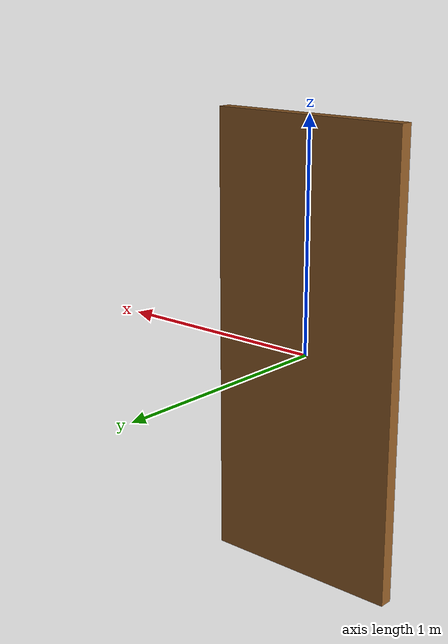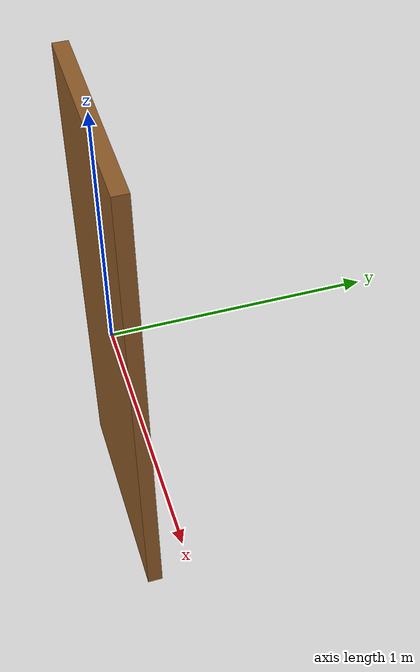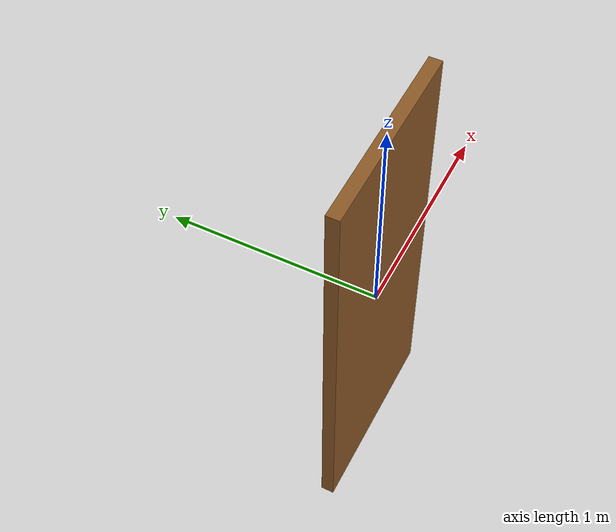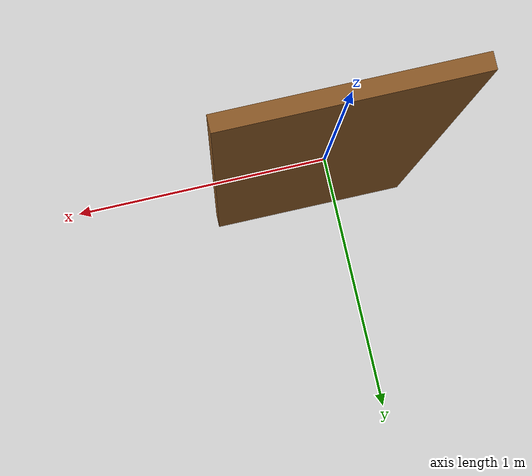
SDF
<?xml version="1.0"?>
<sdf version="1.8">
  <model name="door">
    <static>true</static>
    <link name="link">
      <visual name="visual">
        <geometry>
          <box><size>0.9 0.06 2.0</size></box>
        </geometry>
        <material>
          <ambient>0.40 0.25 0.10 1</ambient>
          <diffuse>0.55 0.35 0.15 1</diffuse>
        </material>
      </visual>
      <collision name="collision">
        <geometry>
          <box><size>0.9 0.06 2.0</size></box>
        </geometry>
      </collision>
    </link>
  </model>
</sdf>
